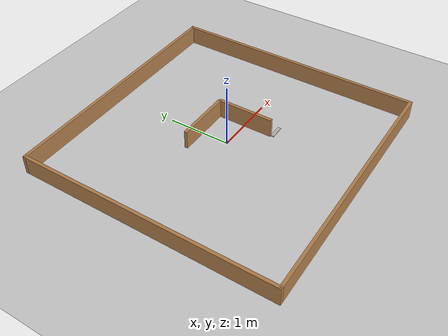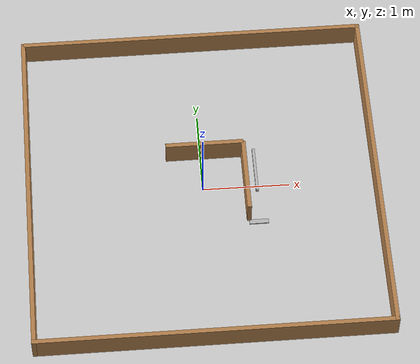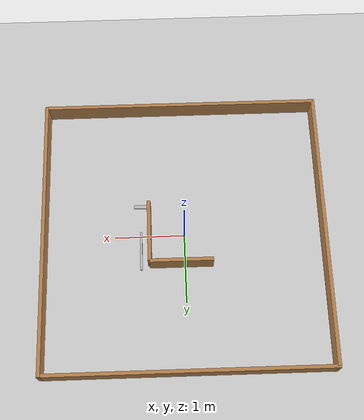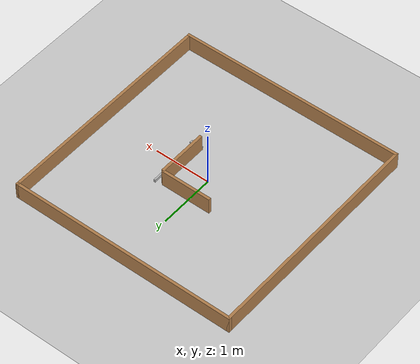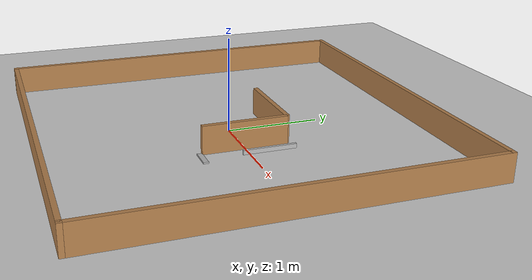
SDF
<sdf version="1.5">
  <world name="default">
    <!-- A global light source -->
    <include>
      <uri>model://sun</uri>
    </include>
    <!-- A ground plane -->
    <include>
      <uri>model://ground_plane</uri>
    </include>
    <!-- A Square 4m -->
    <include>
      <uri>model://square4m</uri>
      <pose>0 0 0 0 0 0</pose>
    </include>
    <!-- A wall90cm -->
    <include>
      <uri>model://wall90cm</uri>
      <name>wall90_1</name>
      <pose>0.5 0 0 0 0 1.57</pose>
    </include>
    <!-- A wall90cm -->
    <include>
      <uri>model://wall90cm</uri>
      <name>wall90_2</name>
      <pose>0.05 0.45 0 0 0 0</pose>
    </include>
    <!-- A traffic sign -->
    <include>
      <uri>model://sign_stop</uri>
      <pose>0.5 -0.5 0.01 0 0 0</pose>
    </include>
  </world>
</sdf>

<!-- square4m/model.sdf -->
<sdf version='1.7'>
  <model name='square4m'>
    <pose>0 0 0 0 -0 0</pose>
    <link name='Wall_10'>
      <collision name='Wall_10_Collision'>
        <geometry>
          <box>
            <size>4.05 0.05 0.3</size>
          </box>
        </geometry>
        <pose>0 0 0.15 0 -0 0</pose>
      </collision>
      <visual name='Wall_10_Visual'>
        <pose>0 0 0.15 0 -0 0</pose>
        <geometry>
          <box>
            <size>4.05 0.05 0.3</size>
          </box>
        </geometry>
        <material>
          <script>
            <uri>file://media/materials/scripts/gazebo.material</uri>
            <name>Gazebo/Wood</name>
          </script>
          <ambient>1 1 1 1</ambient>
        </material>
        <meta>
          <layer>0</layer>
        </meta>
      </visual>
      <pose>0 2 0 0 -0 0</pose>
    </link>
    <link name='Wall_12'>
      <collision name='Wall_12_Collision'>
        <geometry>
          <box>
            <size>4.05 0.05 0.3</size>
          </box>
        </geometry>
        <pose>0 0 0.15 0 -0 0</pose>
      </collision>
      <visual name='Wall_12_Visual'>
        <pose>0 0 0.15 0 -0 0</pose>
        <geometry>
          <box>
            <size>4.05 0.05 0.3</size>
          </box>
        </geometry>
        <material>
          <script>
            <uri>file://media/materials/scripts/gazebo.material</uri>
            <name>Gazebo/Wood</name>
          </script>
          <ambient>1 1 1 1</ambient>
        </material>
        <meta>
          <layer>0</layer>
        </meta>
      </visual>
      <pose>2 0 0 0 -0 -1.5708</pose>
    </link>
    <link name='Wall_14'>
      <collision name='Wall_14_Collision'>
        <geometry>
          <box>
            <size>4.05 0.05 0.3</size>
          </box>
        </geometry>
        <pose>0 0 0.15 0 -0 0</pose>
      </collision>
      <visual name='Wall_14_Visual'>
        <pose>0 0 0.15 0 -0 0</pose>
        <geometry>
          <box>
            <size>4.05 0.05 0.3</size>
          </box>
        </geometry>
        <material>
          <script>
            <uri>file://media/materials/scripts/gazebo.material</uri>
            <name>Gazebo/Wood</name>
          </script>
          <ambient>1 1 1 1</ambient>
        </material>
        <meta>
          <layer>0</layer>
        </meta>
      </visual>
      <pose>0 -2 0 0 -0 3.14159</pose>
    </link>
    <link name='Wall_8'>
      <collision name='Wall_8_Collision'>
        <geometry>
          <box>
            <size>4.05 0.05 0.3</size>
          </box>
        </geometry>
        <pose>0 0 0.15 0 -0 0</pose>
      </collision>
      <visual name='Wall_8_Visual'>
        <pose>0 0 0.15 0 -0 0</pose>
        <geometry>
          <box>
            <size>4.05 0.05 0.3</size>
          </box>
        </geometry>
        <material>
          <script>
            <uri>file://media/materials/scripts/gazebo.material</uri>
            <name>Gazebo/Wood</name>
          </script>
          <ambient>1 1 1 1</ambient>
        </material>
        <meta>
          <layer>0</layer>
        </meta>
      </visual>
      <pose>-2 0 0 0 -0 -1.5708</pose>
    </link>
    <static>1</static>
  </model>
</sdf>

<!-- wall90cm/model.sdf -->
<sdf version='1.7'>
  <model name='wall90cm'>
    <pose>0 0 0 0 0 0</pose>
    <link name='Wall_6'>
      <collision name='Wall_6_Collision'>
        <geometry>
          <box>
            <size>0.9 0.05 0.3</size>
          </box>
        </geometry>
        <pose>0 0 0.15 0 -0 0</pose>
      </collision>
      <visual name='Wall_6_Visual'>
        <pose>0 0 0.15 0 -0 0</pose>
        <geometry>
          <box>
            <size>0.9 0.05 0.3</size>
          </box>
        </geometry>
        <material>
          <script>
            <uri>file://media/materials/scripts/gazebo.material</uri>
            <name>Gazebo/Wood</name>
          </script>
          <ambient>1 1 1 1</ambient>
        </material>
        <meta>
          <layer>0</layer>
        </meta>
      </visual>
      <pose>0 0 0 0 0 0</pose>
    </link>
    <static>1</static>
  </model>
</sdf>

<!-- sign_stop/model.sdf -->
<sdf version="1.6">
  <model name="sign_stop">
    <static>true</static>
    <link name="link">
      <collision name="collision">
        <geometry>
          <mesh>
            <pose>0 0 0 0 0 0</pose>

            <scale>4.34593654932638 4.34593654932638 4.34593654932638</scale>
            <uri>model://sign_stop/meshes/sign_stop.obj</uri>
          </mesh>
        </geometry>
      </collision>
      <visual name="visual">
        <geometry>
          <mesh>
            <pose>0 0 0 0 0 0</pose>
            <scale>4.34593654932638 4.34593654932638 4.34593654932638</scale>

            <uri>model://sign_stop/meshes/sign_stop.obj</uri>
          </mesh>
        </geometry>
      </visual>
    </link>
  </model>
</sdf>
